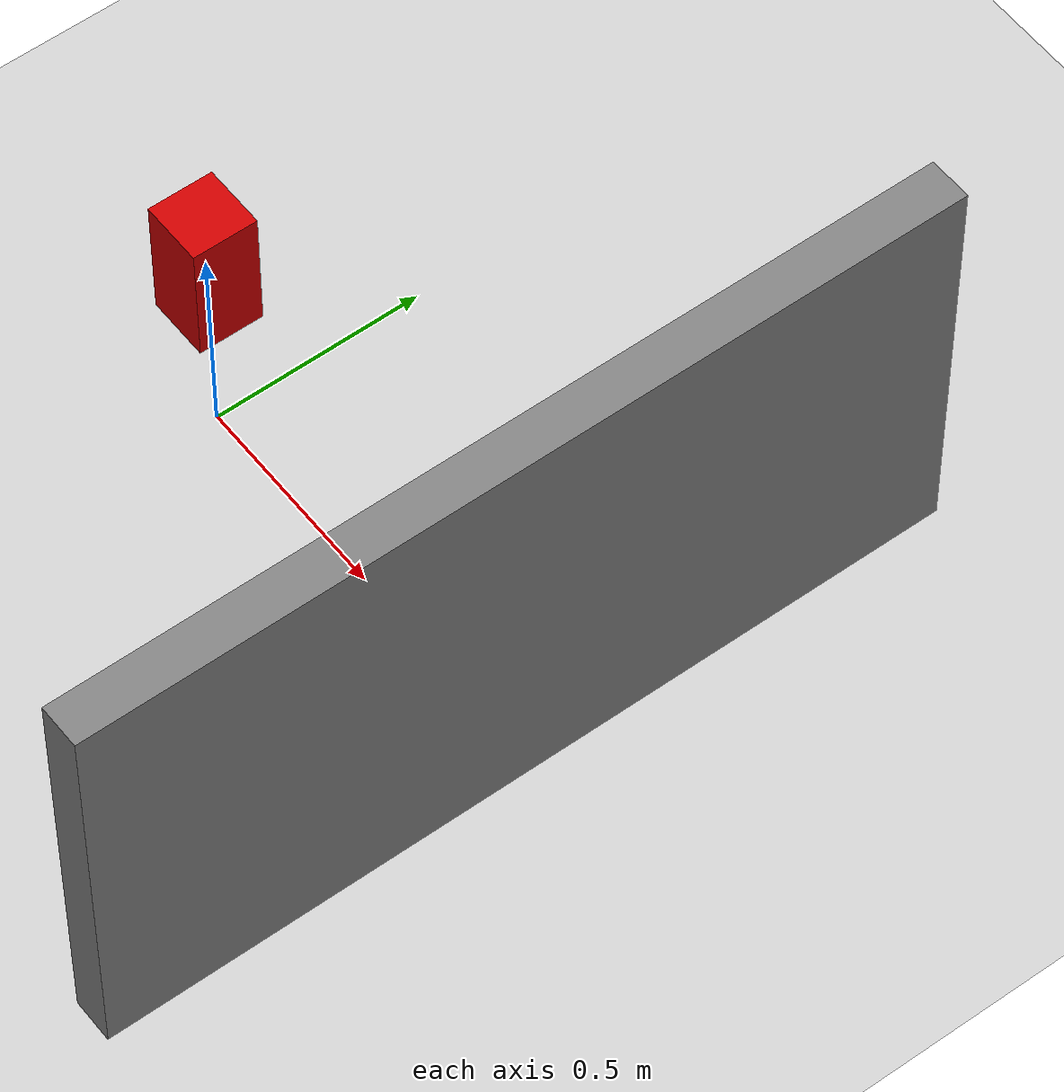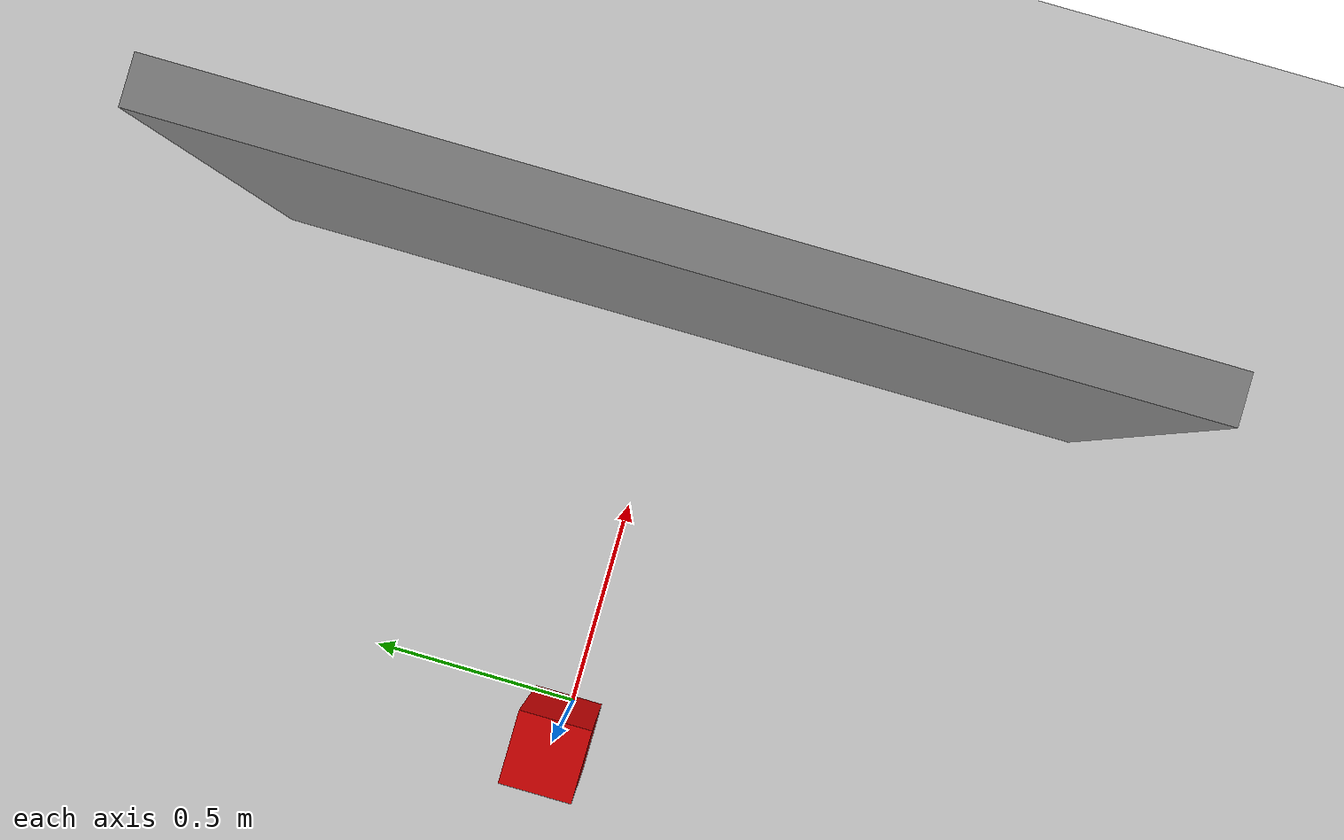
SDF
<?xml version="1.0" ?>
<sdf version="1.6">
  <world name="simple_humanoid_world">
    <include>
      <uri>model://sun</uri>
    </include>
    <include>
      <uri>model://ground_plane</uri>
    </include>

    <!-- Placeholder for our simple humanoid robot from Chapter 3 -->
    <!-- In a real scenario, this would reference a properly packaged robot model -->
    <!-- For demonstration, we assume a robot description is available or integrated -->
    <model name="humanoid_robot">
      <pose>0 0 0.5 0 0 0</pose>
      <!-- Visual and collision properties would be defined here or by including a URDF/SDF -->
      <link name="base_link">
        <inertial><mass>1.0</mass><inertia ixx="0.01" ixy="0.0" ixz="0.0" iyy="0.01" iyz="0.0" izz="0.01"/></inertial>
        <visual name="visual">
          <geometry><box><size>0.1 0.1 0.05</size></box></geometry>
          <material><ambient>0.0 0.0 1.0 1</ambient><diffuse>0.0 0.0 1.0 1</diffuse><specular>0.0 0.0 1.0 1</specular></material>
        </visual>
        <collision name="collision"><geometry><box><size>0.1 0.1 0.05</size></box></geometry></collision>
      </link>
      <link name="torso_link">
        <inertial><mass>2.0</mass><inertia ixx="0.05" ixy="0.0" ixz="0.0" iyy="0.05" iyz="0.0" izz="0.02"/></inertial>
        <visual name="visual">
          <geometry><box><size>0.15 0.15 0.3</size></box></geometry>
          <material><ambient>0.8 0.0 0.0 1</ambient><diffuse>0.8 0.0 0.0 1</diffuse><specular>0.8 0.0 0.0 1</specular></material>
        </visual>
        <collision name="collision"><geometry><box><size>0.15 0.15 0.3</size></box></geometry></collision>
      </link>
      <joint name="base_to_torso_joint" type="fixed">
        <parent>base_link</parent>
        <child>torso_link</child>
        <origin xyz="0 0 0.175"/>
      </joint>
    </model>

    <!-- A simple obstacle -->
    <model name="wall_obstacle">
      <pose>1 0 0.5 0 0 0</pose>
      <link name="wall_link">
        <visual name="visual">
          <geometry>
            <box>
              <size>0.1 2 1</size>
            </box>
          </geometry>
          <material>
            <ambient>0.5 0.5 0.5 1</ambient>
            <diffuse>0.5 0.5 0.5 1</diffuse>
            <specular>0.5 0.5 0.5 1</specular>
          </material>
        </visual>
        <collision name="collision">
          <geometry>
            <box>
              <size>0.1 2 1</size>
            </box>
          </geometry>
        </collision>
      </link>
    </model>

  </world>
</sdf>
